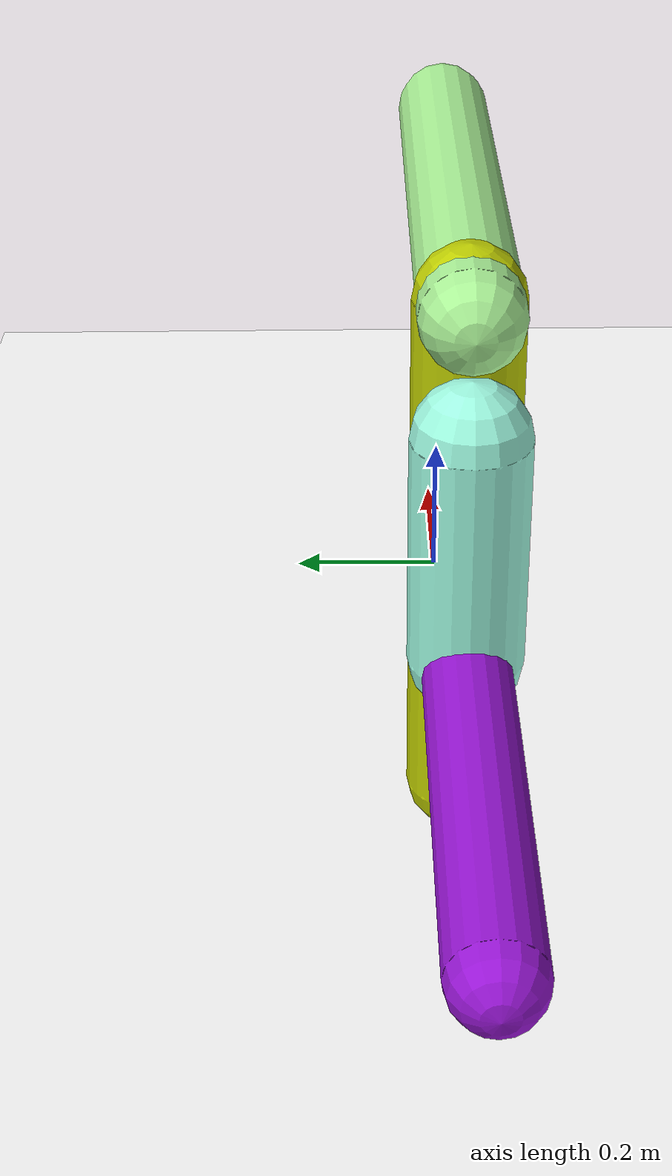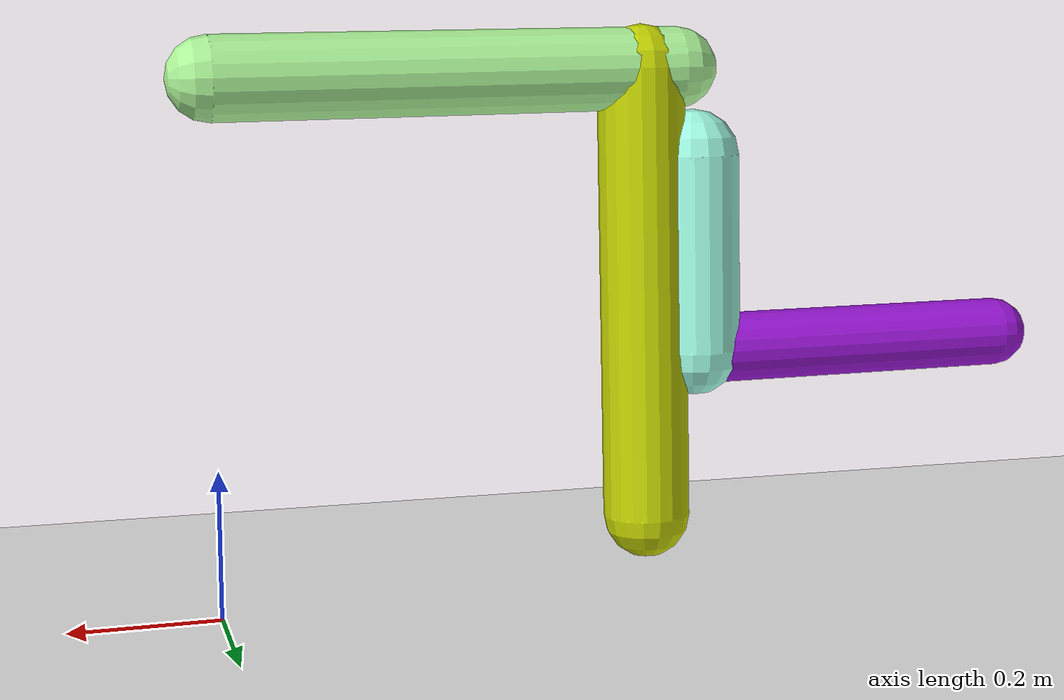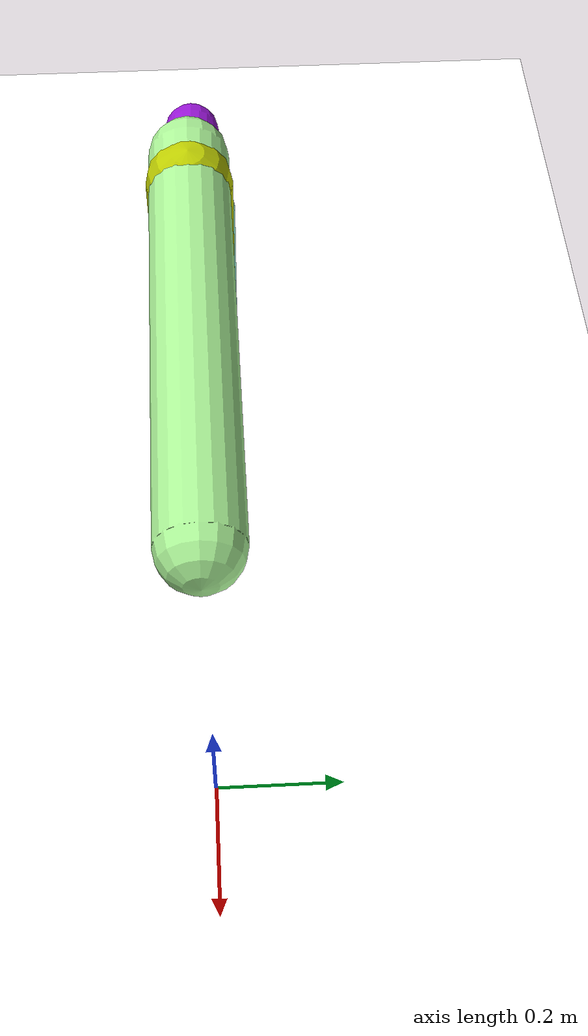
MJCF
<mujoco model="morphology">
  <option timestep="0.01"/>
  <default>
    <default class="/"/>
  </default>
  <asset>
    <texture name="texplane" type="2d" builtin="checker" rgb1="0.1 0.2 0.3" rgb2="0.2 0.3 0.4" width="300" height="300"/>
    <material name="MatPlane" class="/" texture="texplane" texrepeat="20 20" specular="1" shininess="1" reflectance="0.5"/>
  </asset>
  <worldbody>
    <light name="//unnamed_light_0" class="/" directional="true" pos="0 0 1.5" dir="0 0 -1.3" cutoff="1e+02" exponent="1" diffuse="1 1 1" specular="0.1 0.1 0.1"/>
    <geom name="ground" class="/" type="plane" size="15 15 0.5" material="MatPlane" rgba="1 1 1 1"/>
    <body name="body" pos="0 0 0.71">
      <geom name="geom0" class="/" type="capsule" contype="1" conaffinity="1" condim="3" size="0.056" rgba="0.67 0.95 0.59 1" friction="0.4 0.1 0.1" fromto="0 0 0 -0.63 0 0.015"/>
      <body name="body1" pos="-0.58 0 0.014">
        <geom name="geom1" class="/" type="capsule" contype="1" conaffinity="1" condim="3" size="0.06" rgba="0.75 0.81 0.0046 1" friction="0.4 0.1 0.1" fromto="0 0 0 -0.012 0 -0.62"/>
        <body name="body2" pos="-0.0073 0 -0.39">
          <geom name="geom2" class="/" type="capsule" contype="1" conaffinity="1" condim="3" size="0.049" rgba="0.6 0.085 0.84 1" friction="0.4 0.1 0.1" fromto="0 0 0 -0.54 0 0.0075"/>
          <body name="body3" pos="-0.074 0 0.001">
            <geom name="geom3" class="/" type="capsule" contype="1" conaffinity="1" condim="3" size="0.064" rgba="0.62 0.98 0.88 1" friction="0.4 0.1 0.1" fromto="0 0 0 0.0051 0 0.27"/>
            <joint name="joint3" class="/" type="hinge" axis="0 1 0" limited="true" stiffness="20" range="-39 39" armature="0.1" damping="2"/>
          </body>
          <joint name="joint2" class="/" type="hinge" axis="0 1 0" limited="true" stiffness="20" range="-34 34" armature="0.1" damping="2"/>
        </body>
        <joint name="joint1" class="/" type="hinge" axis="0 1 0" limited="true" stiffness="20" range="-38 38" armature="0.1" damping="2"/>
      </body>
      <joint name="rootx" class="/" type="slide" axis="1 0 0" limited="false" stiffness="0" armature="0" damping="0"/>
      <joint name="rootz" class="/" type="slide" axis="0 0 1" limited="false" stiffness="0" armature="0" damping="0"/>
      <joint name="rooty" class="/" type="hinge" axis="0 1 0" limited="false" stiffness="0" armature="0" damping="0"/>
    </body>
  </worldbody>
  <actuator>
    <motor name="motor3" class="/" ctrllimited="true" ctrlrange="-1 1" gear="1.1e+02" joint="joint3"/>
    <motor name="motor2" class="/" ctrllimited="true" ctrlrange="-1 1" gear="1.2e+02" joint="joint2"/>
    <motor name="motor1" class="/" ctrllimited="true" ctrlrange="-1 1" gear="1.7e+02" joint="joint1"/>
  </actuator>
  <sensor>
    <subtreelinvel name="velocity" body="body"/>
  </sensor>
</mujoco>
